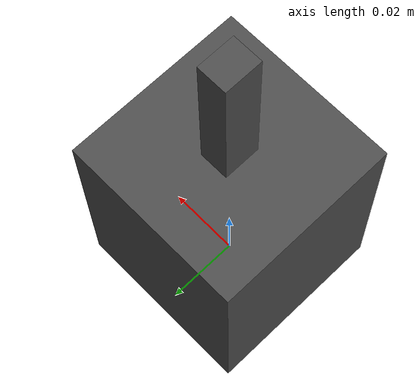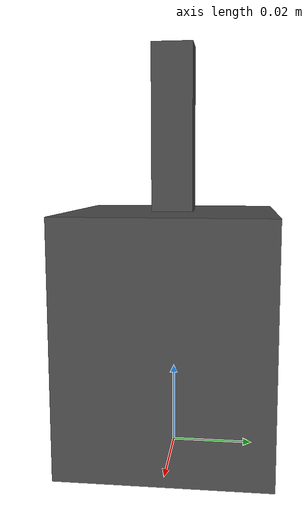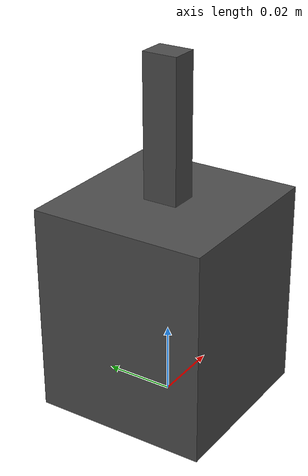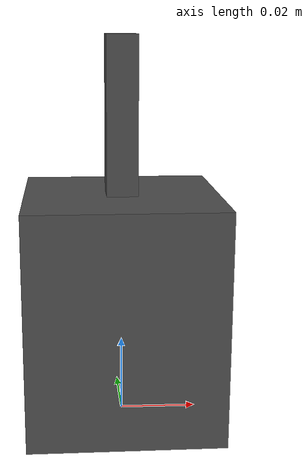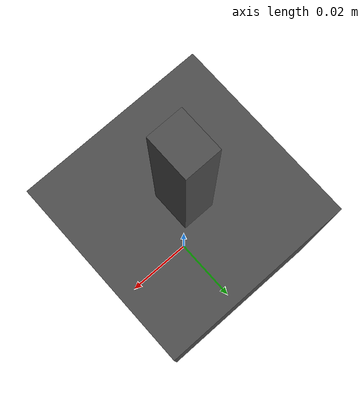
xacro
<?xml version="1.0"?>
<!--
  独立夹爪模型（挂在 world 上），用于单独校验/可视化夹爪 URDF：
    check_urdf <(xacro gripper_standalone.xacro)
    ros2 launch ... 或 RViz 加 RobotModel 查看
-->
<robot name="worm_epgc50_standalone" xmlns:xacro="http://www.ros.org/wiki/xacro">
  <xacro:include filename="$(find bin_picking_description)/urdf/worm_epgc50.xacro"/>

  <link name="world"/>

  <xacro:worm_epgc50 prefix="gripper_" parent="world">
    <origin xyz="0 0 0" rpy="0 0 0"/>
  </xacro:worm_epgc50>
</robot>

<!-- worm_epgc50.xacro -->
<robot xmlns:xacro="http://www.ros.org/wiki/xacro">

  <xacro:macro name="worm_epgc50" params="prefix parent *origin">

    <!-- ===== 占位尺寸（按实物修改）===== -->
    <xacro:property name="body_len" value="0.060"/>   <!-- 沿接近轴(Z)长度 -->
    <xacro:property name="body_w"   value="0.050"/>
    <xacro:property name="body_h"   value="0.050"/>
    <xacro:property name="finger_len"   value="0.040"/>
    <xacro:property name="finger_w"     value="0.010"/>
    <xacro:property name="finger_thick" value="0.008"/>
    <xacro:property name="stroke_half"  value="0.025"/> <!-- 单指行程 25mm -->
    <xacro:property name="mass_body"    value="0.30"/>
    <!-- TCP 距基座(沿Z)的距离 = 本体长 + 指长 -->
    <xacro:property name="tcp_z" value="${body_len + finger_len}"/>

    <!-- 基座，固连到 parent(tool0) -->
    <joint name="${prefix}base_joint" type="fixed">
      <parent link="${parent}"/>
      <child link="${prefix}base_link"/>
      <xacro:insert_block name="origin"/>
    </joint>

    <link name="${prefix}base_link">
      <visual>
        <origin xyz="0 0 ${body_len/2}" rpy="0 0 0"/>
        <geometry><box size="${body_w} ${body_h} ${body_len}"/></geometry>
        <material name="worm_gray"><color rgba="0.3 0.3 0.3 1"/></material>
      </visual>
      <collision>
        <origin xyz="0 0 ${body_len/2}" rpy="0 0 0"/>
        <geometry><box size="${body_w} ${body_h} ${body_len}"/></geometry>
      </collision>
      <inertial>
        <mass value="${mass_body}"/>
        <inertia ixx="1e-4" iyy="1e-4" izz="1e-4" ixy="0" ixz="0" iyz="0"/>
      </inertial>
    </link>

    <!-- 左指：沿 +X 平移 -->
    <joint name="${prefix}left_finger_joint" type="prismatic">
      <parent link="${prefix}base_link"/>
      <child link="${prefix}left_finger"/>
      <origin xyz="0 0 ${body_len}" rpy="0 0 0"/>
      <axis xyz="1 0 0"/>
      <limit lower="0.0" upper="${stroke_half}" effort="50" velocity="0.1"/>
    </joint>
    <link name="${prefix}left_finger">
      <visual>
        <origin xyz="0 0 ${finger_len/2}" rpy="0 0 0"/>
        <geometry><box size="${finger_thick} ${finger_w} ${finger_len}"/></geometry>
        <material name="worm_gray"/>
      </visual>
      <collision>
        <origin xyz="0 0 ${finger_len/2}" rpy="0 0 0"/>
        <geometry><box size="${finger_thick} ${finger_w} ${finger_len}"/></geometry>
      </collision>
      <inertial>
        <mass value="0.02"/>
        <inertia ixx="1e-6" iyy="1e-6" izz="1e-6" ixy="0" ixz="0" iyz="0"/>
      </inertial>
    </link>

    <!-- 右指：沿 -X 平移（mimic 左指）-->
    <joint name="${prefix}right_finger_joint" type="prismatic">
      <parent link="${prefix}base_link"/>
      <child link="${prefix}right_finger"/>
      <origin xyz="0 0 ${body_len}" rpy="0 0 0"/>
      <axis xyz="-1 0 0"/>
      <limit lower="0.0" upper="${stroke_half}" effort="50" velocity="0.1"/>
      <mimic joint="${prefix}left_finger_joint" multiplier="1.0" offset="0.0"/>
    </joint>
    <link name="${prefix}right_finger">
      <visual>
        <origin xyz="0 0 ${finger_len/2}" rpy="0 0 0"/>
        <geometry><box size="${finger_thick} ${finger_w} ${finger_len}"/></geometry>
        <material name="worm_gray"/>
      </visual>
      <collision>
        <origin xyz="0 0 ${finger_len/2}" rpy="0 0 0"/>
        <geometry><box size="${finger_thick} ${finger_w} ${finger_len}"/></geometry>
      </collision>
      <inertial>
        <mass value="0.02"/>
        <inertia ixx="1e-6" iyy="1e-6" izz="1e-6" ixy="0" ixz="0" iyz="0"/>
      </inertial>
    </link>

    <!-- TCP：两指中间、指尖处。抓取规划用此 frame（grasp_executor 的 tcp_link）-->
    <link name="${prefix}grasp_tcp"/>
    <joint name="${prefix}grasp_tcp_joint" type="fixed">
      <parent link="${prefix}base_link"/>
      <child link="${prefix}grasp_tcp"/>
      <origin xyz="0 0 ${tcp_z}" rpy="0 0 0"/>
    </joint>

  </xacro:macro>
</robot>
